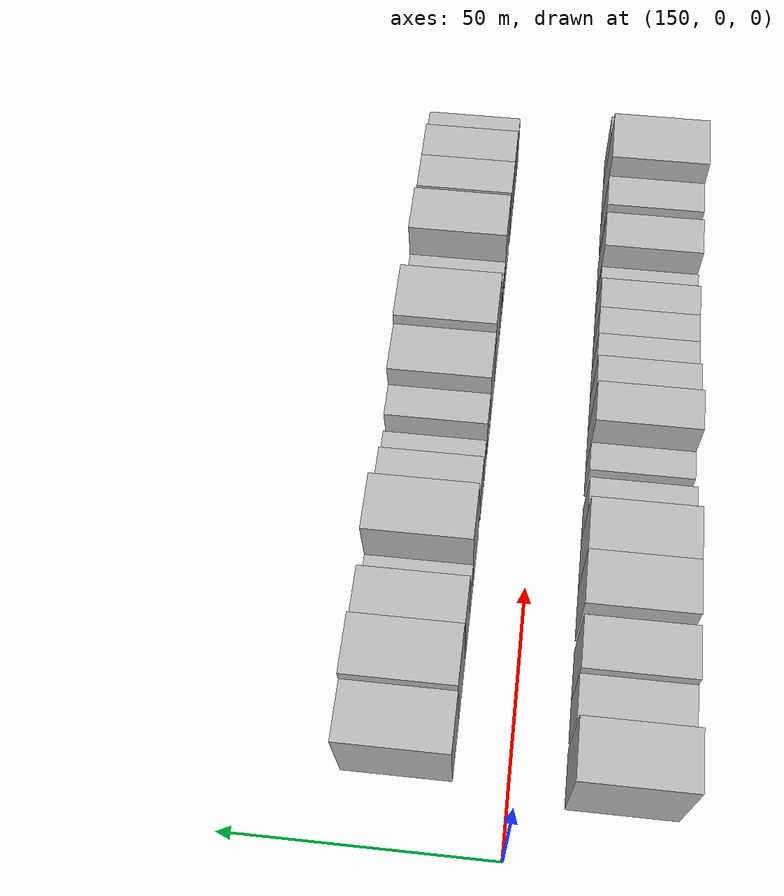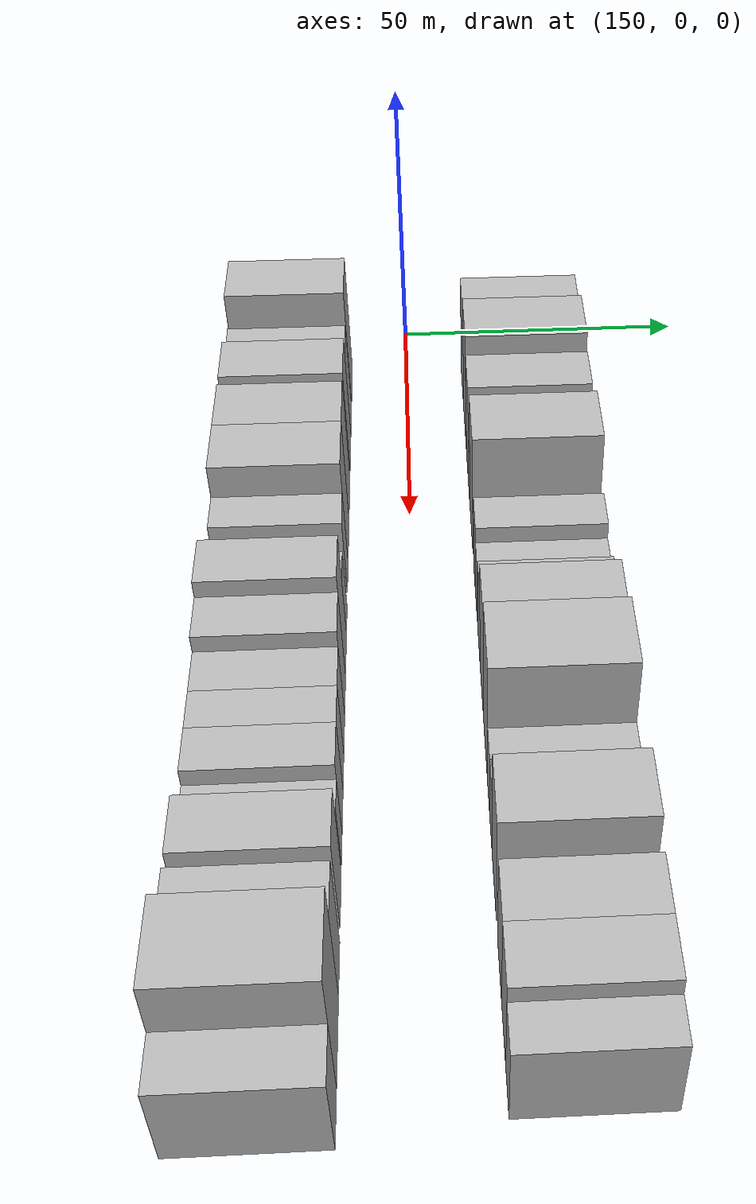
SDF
<sdf version="1.6">
 <world name="default">
  <model name="building_16">
   <static>1</static>
   <pose>167.8705 20.0000 0 0.000000 0.000000 1.570796</pose>
   <link name="link">
    <pose>0 0 10.50 0 0 0</pose>
    <collision name="collision"><geometry><box><size>20.0000 10.4900 21.0000</size></box></geometry></collision>
    <visual name="visual">
     <cast_shadows>0</cast_shadows>
     <geometry><box><size>20.0000 10.4900 21.0000</size></box></geometry>
     <material>
      <script>
       <uri>model://HANNAS_wall/materials/scripts</uri>
       <uri>model://HANNAS_wall/materials/textures</uri>
       <name>vrc/HANNAS_wall</name>
      </script>
     </material>
    </visual>
   </link>
  </model>
  <model name="building_17">
   <static>1</static>
   <pose>178.4497 20.0000 0 0.000000 0.000000 1.570796</pose>
   <link name="link">
    <pose>0 0 12.00 0 0 0</pose>
    <collision name="collision"><geometry><box><size>20.0000 10.6684 24.0000</size></box></geometry></collision>
    <visual name="visual">
     <cast_shadows>0</cast_shadows>
     <geometry><box><size>20.0000 10.6684 24.0000</size></box></geometry>
     <material>
      <script>
       <uri>model://HANNAS_wall/materials/scripts</uri>
       <uri>model://HANNAS_wall/materials/textures</uri>
       <name>vrc/HANNAS_wall</name>
      </script>
     </material>
    </visual>
   </link>
  </model>
  <model name="building_18">
   <static>1</static>
   <pose>189.0819 20.0000 0 0.000000 0.000000 1.570796</pose>
   <link name="link">
    <pose>0 0 10.50 0 0 0</pose>
    <collision name="collision"><geometry><box><size>20.0000 8.5960 21.0000</size></box></geometry></collision>
    <visual name="visual">
     <cast_shadows>0</cast_shadows>
     <geometry><box><size>20.0000 8.5960 21.0000</size></box></geometry>
     <material>
      <script>
       <uri>model://HANNAS_wall/materials/scripts</uri>
       <uri>model://HANNAS_wall/materials/textures</uri>
       <name>vrc/HANNAS_wall</name>
      </script>
     </material>
    </visual>
   </link>
  </model>
  <model name="building_19">
   <static>1</static>
   <pose>196.1919 20.0000 0 0.000000 0.000000 1.570796</pose>
   <link name="link">
    <pose>0 0 6.00 0 0 0</pose>
    <collision name="collision"><geometry><box><size>20.0000 5.6239 12.0000</size></box></geometry></collision>
    <visual name="visual">
     <cast_shadows>0</cast_shadows>
     <geometry><box><size>20.0000 5.6239 12.0000</size></box></geometry>
     <material>
      <script>
       <uri>model://HANNAS_wall/materials/scripts</uri>
       <uri>model://HANNAS_wall/materials/textures</uri>
       <name>vrc/HANNAS_wall</name>
      </script>
     </material>
    </visual>
   </link>
  </model>
  <model name="building_20">
   <static>1</static>
   <pose>204.3961 20.0000 0 0.000000 0.000000 1.570796</pose>
   <link name="link">
    <pose>0 0 12.00 0 0 0</pose>
    <collision name="collision"><geometry><box><size>20.0000 10.7846 24.0000</size></box></geometry></collision>
    <visual name="visual">
     <cast_shadows>0</cast_shadows>
     <geometry><box><size>20.0000 10.7846 24.0000</size></box></geometry>
     <material>
      <script>
       <uri>model://HANNAS_wall/materials/scripts</uri>
       <uri>model://HANNAS_wall/materials/textures</uri>
       <name>vrc/HANNAS_wall</name>
      </script>
     </material>
    </visual>
   </link>
  </model>
  <model name="building_21">
   <static>1</static>
   <pose>216.2047 20.0000 0 0.000000 0.000000 1.570796</pose>
   <link name="link">
    <pose>0 0 7.50 0 0 0</pose>
    <collision name="collision"><geometry><box><size>20.0000 6.8326 15.0000</size></box></geometry></collision>
    <visual name="visual">
     <cast_shadows>0</cast_shadows>
     <geometry><box><size>20.0000 6.8326 15.0000</size></box></geometry>
     <material>
      <script>
       <uri>model://HANNAS_wall/materials/scripts</uri>
       <uri>model://HANNAS_wall/materials/textures</uri>
       <name>vrc/HANNAS_wall</name>
      </script>
     </material>
    </visual>
   </link>
  </model>
  <model name="building_22">
   <static>1</static>
   <pose>222.1223 20.0000 0 0.000000 0.000000 1.570796</pose>
   <link name="link">
    <pose>0 0 6.00 0 0 0</pose>
    <collision name="collision"><geometry><box><size>20.0000 5.0026 12.0000</size></box></geometry></collision>
    <visual name="visual">
     <cast_shadows>0</cast_shadows>
     <geometry><box><size>20.0000 5.0026 12.0000</size></box></geometry>
     <material>
      <script>
       <uri>model://HANNAS_wall/materials/scripts</uri>
       <uri>model://HANNAS_wall/materials/textures</uri>
       <name>vrc/HANNAS_wall</name>
      </script>
     </material>
    </visual>
   </link>
  </model>
  <model name="building_23">
   <static>1</static>
   <pose>229.9426 20.0000 0 0.000000 0.000000 1.570796</pose>
   <link name="link">
    <pose>0 0 7.50 0 0 0</pose>
    <collision name="collision"><geometry><box><size>20.0000 6.6379 15.0000</size></box></geometry></collision>
    <visual name="visual">
     <cast_shadows>0</cast_shadows>
     <geometry><box><size>20.0000 6.6379 15.0000</size></box></geometry>
     <material>
      <script>
       <uri>model://HANNAS_wall/materials/scripts</uri>
       <uri>model://HANNAS_wall/materials/textures</uri>
       <name>vrc/HANNAS_wall</name>
      </script>
     </material>
    </visual>
   </link>
  </model>
  <model name="building_24">
   <static>1</static>
   <pose>238.3424 20.0000 0 0.000000 0.000000 1.570796</pose>
   <link name="link">
    <pose>0 0 10.50 0 0 0</pose>
    <collision name="collision"><geometry><box><size>20.0000 10.1618 21.0000</size></box></geometry></collision>
    <visual name="visual">
     <cast_shadows>0</cast_shadows>
     <geometry><box><size>20.0000 10.1618 21.0000</size></box></geometry>
     <material>
      <script>
       <uri>model://HANNAS_wall/materials/scripts</uri>
       <uri>model://HANNAS_wall/materials/textures</uri>
       <name>vrc/HANNAS_wall</name>
      </script>
     </material>
    </visual>
   </link>
  </model>
  <model name="building_25">
   <static>1</static>
   <pose>249.3324 20.0000 0 0.000000 0.000000 1.570796</pose>
   <link name="link">
    <pose>0 0 12.00 0 0 0</pose>
    <collision name="collision"><geometry><box><size>20.0000 11.8182 24.0000</size></box></geometry></collision>
    <visual name="visual">
     <cast_shadows>0</cast_shadows>
     <geometry><box><size>20.0000 11.8182 24.0000</size></box></geometry>
     <material>
      <script>
       <uri>model://HANNAS_wall/materials/scripts</uri>
       <uri>model://HANNAS_wall/materials/textures</uri>
       <name>vrc/HANNAS_wall</name>
      </script>
     </material>
    </visual>
   </link>
  </model>
  <model name="building_26">
   <static>1</static>
   <pose>257.8431 20.0000 0 0.000000 0.000000 1.570796</pose>
   <link name="link">
    <pose>0 0 6.00 0 0 0</pose>
    <collision name="collision"><geometry><box><size>20.0000 5.2031 12.0000</size></box></geometry></collision>
    <visual name="visual">
     <cast_shadows>0</cast_shadows>
     <geometry><box><size>20.0000 5.2031 12.0000</size></box></geometry>
     <material>
      <script>
       <uri>model://HANNAS_wall/materials/scripts</uri>
       <uri>model://HANNAS_wall/materials/textures</uri>
       <name>vrc/HANNAS_wall</name>
      </script>
     </material>
    </visual>
   </link>
  </model>
  <model name="building_27">
   <static>1</static>
   <pose>264.0387 20.0000 0 0.000000 0.000000 1.570796</pose>
   <link name="link">
    <pose>0 0 6.00 0 0 0</pose>
    <collision name="collision"><geometry><box><size>20.0000 5.1881 12.0000</size></box></geometry></collision>
    <visual name="visual">
     <cast_shadows>0</cast_shadows>
     <geometry><box><size>20.0000 5.1881 12.0000</size></box></geometry>
     <material>
      <script>
       <uri>model://HANNAS_wall/materials/scripts</uri>
       <uri>model://HANNAS_wall/materials/textures</uri>
       <name>vrc/HANNAS_wall</name>
      </script>
     </material>
    </visual>
   </link>
  </model>
  <model name="building_28">
   <static>1</static>
   <pose>271.7900 20.0000 0 0.000000 0.000000 1.570796</pose>
   <link name="link">
    <pose>0 0 10.50 0 0 0</pose>
    <collision name="collision"><geometry><box><size>20.0000 10.3144 21.0000</size></box></geometry></collision>
    <visual name="visual">
     <cast_shadows>0</cast_shadows>
     <geometry><box><size>20.0000 10.3144 21.0000</size></box></geometry>
     <material>
      <script>
       <uri>model://HANNAS_wall/materials/scripts</uri>
       <uri>model://HANNAS_wall/materials/textures</uri>
       <name>vrc/HANNAS_wall</name>
      </script>
     </material>
    </visual>
   </link>
  </model>
  <model name="building_29">
   <static>1</static>
   <pose>284.1666 20.0000 0 0.000000 0.000000 1.570796</pose>
   <link name="link">
    <pose>0 0 9.00 0 0 0</pose>
    <collision name="collision"><geometry><box><size>20.0000 8.4388 18.0000</size></box></geometry></collision>
    <visual name="visual">
     <cast_shadows>0</cast_shadows>
     <geometry><box><size>20.0000 8.4388 18.0000</size></box></geometry>
     <material>
      <script>
       <uri>model://HANNAS_wall/materials/scripts</uri>
       <uri>model://HANNAS_wall/materials/textures</uri>
       <name>vrc/HANNAS_wall</name>
      </script>
     </material>
    </visual>
   </link>
  </model>
  <model name="building_30">
   <static>1</static>
   <pose>292.6248 20.0000 0 0.000000 0.000000 1.570796</pose>
   <link name="link">
    <pose>0 0 9.00 0 0 0</pose>
    <collision name="collision"><geometry><box><size>20.0000 8.4776 18.0000</size></box></geometry></collision>
    <visual name="visual">
     <cast_shadows>0</cast_shadows>
     <geometry><box><size>20.0000 8.4776 18.0000</size></box></geometry>
     <material>
      <script>
       <uri>model://HANNAS_wall/materials/scripts</uri>
       <uri>model://HANNAS_wall/materials/textures</uri>
       <name>vrc/HANNAS_wall</name>
      </script>
     </material>
    </visual>
   </link>
  </model>
  <model name="building_31">
   <static>1</static>
   <pose>300.0310 20.0000 0 0.000000 0.000000 1.570796</pose>
   <link name="link">
    <pose>0 0 7.50 0 0 0</pose>
    <collision name="collision"><geometry><box><size>20.0000 6.3350 15.0000</size></box></geometry></collision>
    <visual name="visual">
     <cast_shadows>0</cast_shadows>
     <geometry><box><size>20.0000 6.3350 15.0000</size></box></geometry>
     <material>
      <script>
       <uri>model://HANNAS_wall/materials/scripts</uri>
       <uri>model://HANNAS_wall/materials/textures</uri>
       <name>vrc/HANNAS_wall</name>
      </script>
     </material>
    </visual>
   </link>
  </model>
  <model name="building_47">
   <static>1</static>
   <pose>165.1466 -20.0000 0 0.000000 0.000000 1.570796</pose>
   <link name="link">
    <pose>0 0 12.00 0 0 0</pose>
    <collision name="collision"><geometry><box><size>20.0000 10.5262 24.0000</size></box></geometry></collision>
    <visual name="visual">
     <cast_shadows>0</cast_shadows>
     <geometry><box><size>20.0000 10.5262 24.0000</size></box></geometry>
     <material>
      <script>
       <uri>model://HANNAS_wall/materials/scripts</uri>
       <uri>model://HANNAS_wall/materials/textures</uri>
       <name>vrc/HANNAS_wall</name>
      </script>
     </material>
    </visual>
   </link>
  </model>
  <model name="building_48">
   <static>1</static>
   <pose>175.2684 -20.0000 0 0.000000 0.000000 1.570796</pose>
   <link name="link">
    <pose>0 0 9.00 0 0 0</pose>
    <collision name="collision"><geometry><box><size>20.0000 7.7175 18.0000</size></box></geometry></collision>
    <visual name="visual">
     <cast_shadows>0</cast_shadows>
     <geometry><box><size>20.0000 7.7175 18.0000</size></box></geometry>
     <material>
      <script>
       <uri>model://HANNAS_wall/materials/scripts</uri>
       <uri>model://HANNAS_wall/materials/textures</uri>
       <name>vrc/HANNAS_wall</name>
      </script>
     </material>
    </visual>
   </link>
  </model>
  <model name="building_49">
   <static>1</static>
   <pose>183.8423 -20.0000 0 0.000000 0.000000 1.570796</pose>
   <link name="link">
    <pose>0 0 10.50 0 0 0</pose>
    <collision name="collision"><geometry><box><size>20.0000 9.4302 21.0000</size></box></geometry></collision>
    <visual name="visual">
     <cast_shadows>0</cast_shadows>
     <geometry><box><size>20.0000 9.4302 21.0000</size></box></geometry>
     <material>
      <script>
       <uri>model://HANNAS_wall/materials/scripts</uri>
       <uri>model://HANNAS_wall/materials/textures</uri>
       <name>vrc/HANNAS_wall</name>
      </script>
     </material>
    </visual>
   </link>
  </model>
  <model name="building_50">
   <static>1</static>
   <pose>195.6039 -20.0000 0 0.000000 0.000000 1.570796</pose>
   <link name="link">
    <pose>0 0 10.50 0 0 0</pose>
    <collision name="collision"><geometry><box><size>20.0000 10.0931 21.0000</size></box></geometry></collision>
    <visual name="visual">
     <cast_shadows>0</cast_shadows>
     <geometry><box><size>20.0000 10.0931 21.0000</size></box></geometry>
     <material>
      <script>
       <uri>model://HANNAS_wall/materials/scripts</uri>
       <uri>model://HANNAS_wall/materials/textures</uri>
       <name>vrc/HANNAS_wall</name>
      </script>
     </material>
    </visual>
   </link>
  </model>
  <model name="building_51">
   <static>1</static>
   <pose>205.6937 -20.0000 0 0.000000 0.000000 1.570796</pose>
   <link name="link">
    <pose>0 0 10.50 0 0 0</pose>
    <collision name="collision"><geometry><box><size>20.0000 10.0865 21.0000</size></box></geometry></collision>
    <visual name="visual">
     <cast_shadows>0</cast_shadows>
     <geometry><box><size>20.0000 10.0865 21.0000</size></box></geometry>
     <material>
      <script>
       <uri>model://HANNAS_wall/materials/scripts</uri>
       <uri>model://HANNAS_wall/materials/textures</uri>
       <name>vrc/HANNAS_wall</name>
      </script>
     </material>
    </visual>
   </link>
  </model>
  <model name="building_52">
   <static>1</static>
   <pose>214.1060 -20.0000 0 0.000000 0.000000 1.570796</pose>
   <link name="link">
    <pose>0 0 7.50 0 0 0</pose>
    <collision name="collision"><geometry><box><size>20.0000 6.7381 15.0000</size></box></geometry></collision>
    <visual name="visual">
     <cast_shadows>0</cast_shadows>
     <geometry><box><size>20.0000 6.7381 15.0000</size></box></geometry>
     <material>
      <script>
       <uri>model://HANNAS_wall/materials/scripts</uri>
       <uri>model://HANNAS_wall/materials/textures</uri>
       <name>vrc/HANNAS_wall</name>
      </script>
     </material>
    </visual>
   </link>
  </model>
  <model name="building_53">
   <static>1</static>
   <pose>223.3999 -20.0000 0 0.000000 0.000000 1.570796</pose>
   <link name="link">
    <pose>0 0 6.00 0 0 0</pose>
    <collision name="collision"><geometry><box><size>20.0000 5.8497 12.0000</size></box></geometry></collision>
    <visual name="visual">
     <cast_shadows>0</cast_shadows>
     <geometry><box><size>20.0000 5.8497 12.0000</size></box></geometry>
     <material>
      <script>
       <uri>model://HANNAS_wall/materials/scripts</uri>
       <uri>model://HANNAS_wall/materials/textures</uri>
       <name>vrc/HANNAS_wall</name>
      </script>
     </material>
    </visual>
   </link>
  </model>
  <model name="building_54">
   <static>1</static>
   <pose>230.5412 -20.0000 0 0.000000 0.000000 1.570796</pose>
   <link name="link">
    <pose>0 0 10.50 0 0 0</pose>
    <collision name="collision"><geometry><box><size>20.0000 8.4329 21.0000</size></box></geometry></collision>
    <visual name="visual">
     <cast_shadows>0</cast_shadows>
     <geometry><box><size>20.0000 8.4329 21.0000</size></box></geometry>
     <material>
      <script>
       <uri>model://HANNAS_wall/materials/scripts</uri>
       <uri>model://HANNAS_wall/materials/textures</uri>
       <name>vrc/HANNAS_wall</name>
      </script>
     </material>
    </visual>
   </link>
  </model>
  <model name="building_55">
   <static>1</static>
   <pose>238.5211 -20.0000 0 0.000000 0.000000 1.570796</pose>
   <link name="link">
    <pose>0 0 9.00 0 0 0</pose>
    <collision name="collision"><geometry><box><size>20.0000 7.5270 18.0000</size></box></geometry></collision>
    <visual name="visual">
     <cast_shadows>0</cast_shadows>
     <geometry><box><size>20.0000 7.5270 18.0000</size></box></geometry>
     <material>
      <script>
       <uri>model://HANNAS_wall/materials/scripts</uri>
       <uri>model://HANNAS_wall/materials/textures</uri>
       <name>vrc/HANNAS_wall</name>
      </script>
     </material>
    </visual>
   </link>
  </model>
  <model name="building_56">
   <static>1</static>
   <pose>245.7893 -20.0000 0 0.000000 0.000000 1.570796</pose>
   <link name="link">
    <pose>0 0 7.50 0 0 0</pose>
    <collision name="collision"><geometry><box><size>20.0000 7.0092 15.0000</size></box></geometry></collision>
    <visual name="visual">
     <cast_shadows>0</cast_shadows>
     <geometry><box><size>20.0000 7.0092 15.0000</size></box></geometry>
     <material>
      <script>
       <uri>model://HANNAS_wall/materials/scripts</uri>
       <uri>model://HANNAS_wall/materials/textures</uri>
       <name>vrc/HANNAS_wall</name>
      </script>
     </material>
    </visual>
   </link>
  </model>
  <model name="building_57">
   <static>1</static>
   <pose>252.4367 -20.0000 0 0.000000 0.000000 1.570796</pose>
   <link name="link">
    <pose>0 0 7.50 0 0 0</pose>
    <collision name="collision"><geometry><box><size>20.0000 6.2856 15.0000</size></box></geometry></collision>
    <visual name="visual">
     <cast_shadows>0</cast_shadows>
     <geometry><box><size>20.0000 6.2856 15.0000</size></box></geometry>
     <material>
      <script>
       <uri>model://HANNAS_wall/materials/scripts</uri>
       <uri>model://HANNAS_wall/materials/textures</uri>
       <name>vrc/HANNAS_wall</name>
      </script>
     </material>
    </visual>
   </link>
  </model>
  <model name="building_58">
   <static>1</static>
   <pose>259.1047 -20.0000 0 0.000000 0.000000 1.570796</pose>
   <link name="link">
    <pose>0 0 7.50 0 0 0</pose>
    <collision name="collision"><geometry><box><size>20.0000 7.0504 15.0000</size></box></geometry></collision>
    <visual name="visual">
     <cast_shadows>0</cast_shadows>
     <geometry><box><size>20.0000 7.0504 15.0000</size></box></geometry>
     <material>
      <script>
       <uri>model://HANNAS_wall/materials/scripts</uri>
       <uri>model://HANNAS_wall/materials/textures</uri>
       <name>vrc/HANNAS_wall</name>
      </script>
     </material>
    </visual>
   </link>
  </model>
  <model name="building_59">
   <static>1</static>
   <pose>265.1229 -20.0000 0 0.000000 0.000000 1.570796</pose>
   <link name="link">
    <pose>0 0 6.00 0 0 0</pose>
    <collision name="collision"><geometry><box><size>20.0000 4.9859 12.0000</size></box></geometry></collision>
    <visual name="visual">
     <cast_shadows>0</cast_shadows>
     <geometry><box><size>20.0000 4.9859 12.0000</size></box></geometry>
     <material>
      <script>
       <uri>model://HANNAS_wall/materials/scripts</uri>
       <uri>model://HANNAS_wall/materials/textures</uri>
       <name>vrc/HANNAS_wall</name>
      </script>
     </material>
    </visual>
   </link>
  </model>
  <model name="building_60">
   <static>1</static>
   <pose>272.8675 -20.0000 0 0.000000 0.000000 1.570796</pose>
   <link name="link">
    <pose>0 0 9.00 0 0 0</pose>
    <collision name="collision"><geometry><box><size>20.0000 8.5032 18.0000</size></box></geometry></collision>
    <visual name="visual">
     <cast_shadows>0</cast_shadows>
     <geometry><box><size>20.0000 8.5032 18.0000</size></box></geometry>
     <material>
      <script>
       <uri>model://HANNAS_wall/materials/scripts</uri>
       <uri>model://HANNAS_wall/materials/textures</uri>
       <name>vrc/HANNAS_wall</name>
      </script>
     </material>
    </visual>
   </link>
  </model>
  <model name="building_61">
   <static>1</static>
   <pose>282.8968 -20.0000 0 0.000000 0.000000 1.570796</pose>
   <link name="link">
    <pose>0 0 9.00 0 0 0</pose>
    <collision name="collision"><geometry><box><size>20.0000 7.5554 18.0000</size></box></geometry></collision>
    <visual name="visual">
     <cast_shadows>0</cast_shadows>
     <geometry><box><size>20.0000 7.5554 18.0000</size></box></geometry>
     <material>
      <script>
       <uri>model://HANNAS_wall/materials/scripts</uri>
       <uri>model://HANNAS_wall/materials/textures</uri>
       <name>vrc/HANNAS_wall</name>
      </script>
     </material>
    </visual>
   </link>
  </model>
  <model name="building_62">
   <static>1</static>
   <pose>292.5594 -20.0000 0 0.000000 0.000000 1.570796</pose>
   <link name="link">
    <pose>0 0 12.00 0 0 0</pose>
    <collision name="collision"><geometry><box><size>20.0000 11.7697 24.0000</size></box></geometry></collision>
    <visual name="visual">
     <cast_shadows>0</cast_shadows>
     <geometry><box><size>20.0000 11.7697 24.0000</size></box></geometry>
     <material>
      <script>
       <uri>model://HANNAS_wall/materials/scripts</uri>
       <uri>model://HANNAS_wall/materials/textures</uri>
       <name>vrc/HANNAS_wall</name>
      </script>
     </material>
    </visual>
   </link>
  </model>
  <model name="building_63">
   <static>1</static>
   <pose>302.1029 -20.0000 0 0.000000 0.000000 1.570796</pose>
   <link name="link">
    <pose>0 0 7.50 0 0 0</pose>
    <collision name="collision"><geometry><box><size>20.0000 7.3174 15.0000</size></box></geometry></collision>
    <visual name="visual">
     <cast_shadows>0</cast_shadows>
     <geometry><box><size>20.0000 7.3174 15.0000</size></box></geometry>
     <material>
      <script>
       <uri>model://HANNAS_wall/materials/scripts</uri>
       <uri>model://HANNAS_wall/materials/textures</uri>
       <name>vrc/HANNAS_wall</name>
      </script>
     </material>
    </visual>
   </link>
  </model>
 </world>
</sdf>
